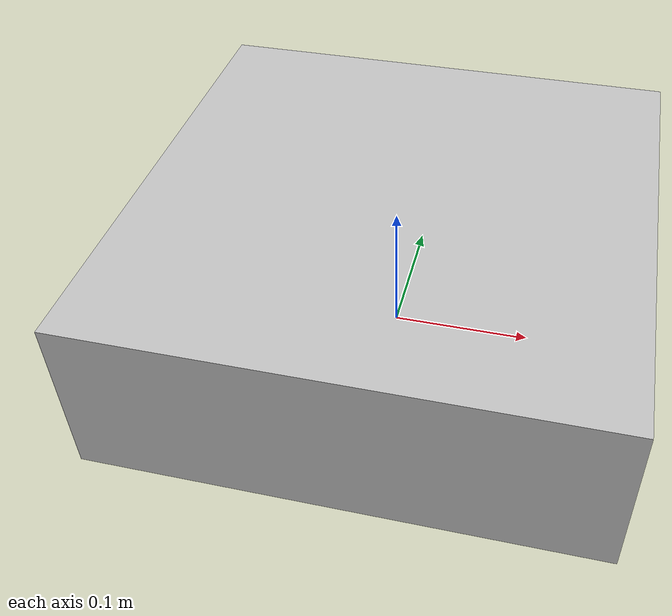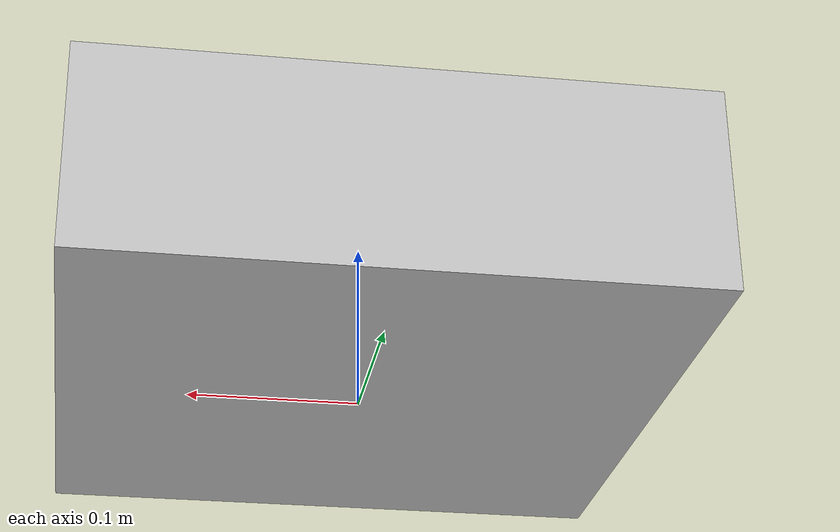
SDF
<?xml version="1.0"?>
<sdf version="1.9">
  <model name="platform">
    <static>true</static>
    <link name="link">
      <pose>0 0 0.06 0 0 0</pose>
      <collision name="collision">
        <geometry>
          <box>
            <size>0.35 0.35 0.12</size>
          </box>
        </geometry>
      </collision>
      <visual name="visual">
        <geometry>
          <box>
            <size>0.35 0.35 0.12</size>
          </box>
        </geometry>
        <material>
          <ambient>0.7 0.7 0.7 1</ambient>
          <diffuse>0.75 0.75 0.75 1</diffuse>
        </material>
      </visual>
    </link>
    <plugin
      filename="libgz-sim-pose-publisher-system.so"
      name="gz::sim::systems::PosePublisher">
      <publish_link_pose>false</publish_link_pose>
      <publish_model_pose>true</publish_model_pose>
      <use_pose_vector_msg>true</use_pose_vector_msg>
      <update_frequency>10</update_frequency>
    </plugin>
  </model>
</sdf>
